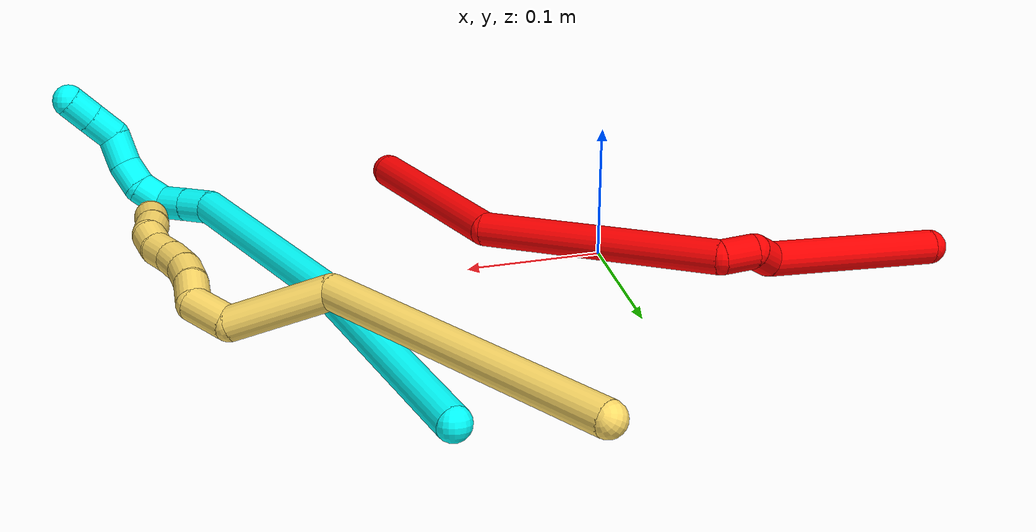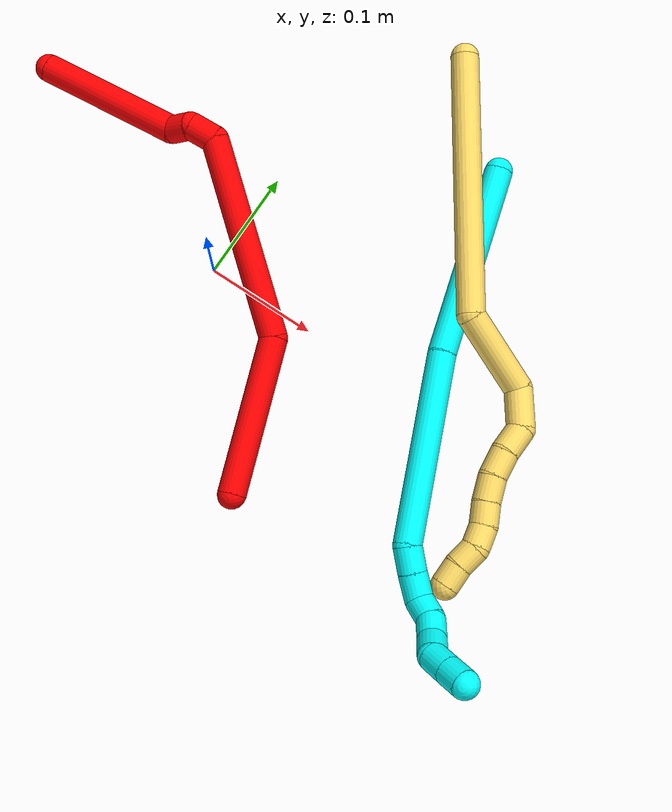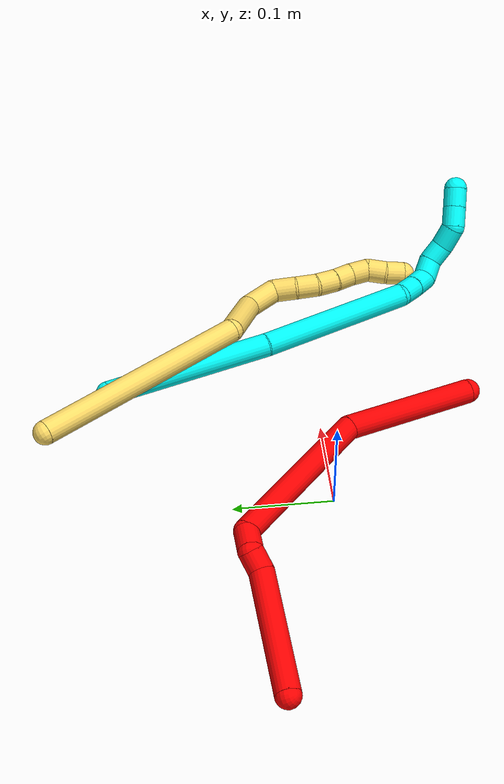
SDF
<sdf version="1.7">
 <world name="default">
  <model name="photoneo_s_sensor">
   <static>1</static>
   <pose>0 0 2 1.57079 1.57079 3.14159</pose>
   <link name="link">
    <inertial><mass>0.1</mass></inertial>
    <sensor name="sensor" type="depth">
     <update_rate>30</update_rate>
     <camera>
      <horizontal_fov>1.22</horizontal_fov>
      <image><width>1920</width><height>1200</height><format>B8G8R8</format></image>
      <clip><near>0.1</near><far>4</far></clip>
      <depth_camera><output>points</output></depth_camera>
     </camera>
     <plugin name="camera_plugin" filename="libgazebo_ros_depth_camera.so">
      <baseline>0.2</baseline>
      <alwaysOn>1</alwaysOn>
      <updateRate>0.0</updateRate>
      <cameraName>camera_ir</cameraName>
      <imageTopicName>/camera/color/image_raw</imageTopicName>
      <cameraInfoTopicName>/camera/color/camera_info</cameraInfoTopicName>
      <depthImageTopicName>/camera/depth/image_raw</depthImageTopicName>
      <depthImageCameraInfoTopicName>/camera/depth/camera_info</depthImageCameraInfoTopicName>
      <pointCloudTopicName>/camera/depth/points</pointCloudTopicName>
      <frameName>fr_optical</frameName>
      <pointCloudCutoff>0.1</pointCloudCutoff>
      <pointCloudCutoffMax>2.0</pointCloudCutoffMax>
      <distortionK1>0</distortionK1>
      <distortionK2>0</distortionK2>
      <distortionK3>0</distortionK3>
      <distortionT1>0</distortionT1>
      <distortionT2>0</distortionT2>
      <CxPrime>0</CxPrime>
      <Cx>0</Cx>
      <Cy>0</Cy>
      <focalLength>0</focalLength>
      <hackBaseline>0</hackBaseline>
     </plugin>
    </sensor>
   </link>
  </model>
  <model name="bin">
   <static>1</static>
   <link name="bottom">
    <collision name="collision-bottom">
     <pose>0 0 -0.01 0 -0 0</pose>
     <geometry><box><size>0.8 0.6 0.02</size></box></geometry>
     <surface>
      <friction><ode><mu>100</mu><mu2>100</mu2></ode></friction>
      <contact><collide_bitmask>65535</collide_bitmask></contact>
     </surface>
    </collision>
   </link>
   <link name="west_wall">
    <collision name="collision-west_wall">
     <pose>-0.41 0 0.1 0 -0 0</pose>
     <geometry><box><size>0.02 0.6 0.2</size></box></geometry>
     <surface>
      <friction><ode><mu>100</mu><mu2>100</mu2></ode></friction>
      <contact><collide_bitmask>65535</collide_bitmask></contact>
     </surface>
    </collision>
   </link>
   <link name="east_wall">
    <collision name="collision-east_wall">
     <pose>0.41 0 0.1 0 -0 0</pose>
     <geometry><box><size>0.02 0.6 0.2</size></box></geometry>
     <surface>
      <friction><ode><mu>100</mu><mu2>100</mu2></ode></friction>
      <contact><collide_bitmask>65535</collide_bitmask></contact>
     </surface>
    </collision>
   </link>
   <link name="south_wall">
    <collision name="collision-south_wall">
     <pose>0 -0.31 0.1 0 -0 0</pose>
     <geometry><box><size>0.8 0.02 0.2</size></box></geometry>
     <surface>
      <friction><ode><mu>100</mu><mu2>100</mu2></ode></friction>
      <contact><collide_bitmask>65535</collide_bitmask></contact>
     </surface>
    </collision>
   </link>
   <link name="north_wall">
    <collision name="collision-north_wall">
     <pose>0 0.31 0.1 0 -0 0</pose>
     <geometry><box><size>0.8 0.02 0.2</size></box></geometry>
     <surface>
      <friction><ode><mu>100</mu><mu2>100</mu2></ode></friction>
      <contact><collide_bitmask>65535</collide_bitmask></contact>
     </surface>
    </collision>
   </link>
  </model>
  <model name="2">
   <static>0</static>
   <link name="2">
    <collision name="collision-cylinder-e_1_1_4">
     <pose>-0.028809 0.045923 -0.043532 -2.32947 -0.427241 0.934547</pose>
     <geometry><cylinder><radius>0.0125</radius><length>0.139052</length></cylinder></geometry>
     <surface>
      <friction><ode><mu>1.16</mu><mu2>1.16</mu2><slip1>0</slip1><slip2>0</slip2></ode></friction>
      <contact><ode><kp>1e+06</kp><kd>1</kd><max_vel>0</max_vel><min_depth>0.001</min_depth></ode></contact>
     </surface>
    </collision>
    <visual name="visual-cylinder-e_1_1_4">
     <pose>-0.028809 0.045923 -0.043532 -2.32947 -0.427241 0.934547</pose>
     <geometry><cylinder><radius>0.0125</radius><length>0.139052</length></cylinder></geometry>
     <material><ambient>1 0 0 1</ambient></material>
    </visual>
    <collision name="collision-cylinder-e_2_4_5">
     <pose>-0.129409 0.14397 -0.110008 -1.98545 -0.900163 1.27487</pose>
     <geometry><cylinder><radius>0.0125</radius><length>0.183274</length></cylinder></geometry>
     <surface>
      <friction><ode><mu>1.16</mu><mu2>1.16</mu2><slip1>0</slip1><slip2>0</slip2></ode></friction>
      <contact><ode><kp>1e+06</kp><kd>1</kd><max_vel>0</max_vel><min_depth>0.001</min_depth></ode></contact>
     </surface>
    </collision>
    <visual name="visual-cylinder-e_2_4_5">
     <pose>-0.129409 0.14397 -0.110008 -1.98545 -0.900163 1.27487</pose>
     <geometry><cylinder><radius>0.0125</radius><length>0.183274</length></cylinder></geometry>
     <material><ambient>1 0 0 1</ambient></material>
    </visual>
    <collision name="collision-cylinder-e_3_5_6">
     <pose>-0.2129 0.197636 -0.129043 -0.375508 -1.22602 0.265708</pose>
     <geometry><cylinder><radius>0.0125</radius><length>0.024864</length></cylinder></geometry>
     <surface>
      <friction><ode><mu>1.16</mu><mu2>1.16</mu2><slip1>0</slip1><slip2>0</slip2></ode></friction>
      <contact><ode><kp>1e+06</kp><kd>1</kd><max_vel>0</max_vel><min_depth>0.001</min_depth></ode></contact>
     </surface>
    </collision>
    <visual name="visual-cylinder-e_3_5_6">
     <pose>-0.2129 0.197636 -0.129043 -0.375508 -1.22602 0.265708</pose>
     <geometry><cylinder><radius>0.0125</radius><length>0.024864</length></cylinder></geometry>
     <material><ambient>1 0 0 1</ambient></material>
    </visual>
    <collision name="collision-cylinder-e_4_6_7">
     <pose>-0.233132 0.192649 -0.123467 1.32087 -0.902369 -0.719947</pose>
     <geometry><cylinder><radius>0.0125</radius><length>0.021741</length></cylinder></geometry>
     <surface>
      <friction><ode><mu>1.16</mu><mu2>1.16</mu2><slip1>0</slip1><slip2>0</slip2></ode></friction>
      <contact><ode><kp>1e+06</kp><kd>1</kd><max_vel>0</max_vel><min_depth>0.001</min_depth></ode></contact>
     </surface>
    </collision>
    <visual name="visual-cylinder-e_4_6_7">
     <pose>-0.233132 0.192649 -0.123467 1.32087 -0.902369 -0.719947</pose>
     <geometry><cylinder><radius>0.0125</radius><length>0.021741</length></cylinder></geometry>
     <material><ambient>1 0 0 1</ambient></material>
    </visual>
    <collision name="collision-cylinder-e_5_7_2">
     <pose>-0.305032 0.1872 -0.105129 -0.064615 -1.31302 0.049794</pose>
     <geometry><cylinder><radius>0.0125</radius><length>0.131069</length></cylinder></geometry>
     <surface>
      <friction><ode><mu>1.16</mu><mu2>1.16</mu2><slip1>0</slip1><slip2>0</slip2></ode></friction>
      <contact><ode><kp>1e+06</kp><kd>1</kd><max_vel>0</max_vel><min_depth>0.001</min_depth></ode></contact>
     </surface>
    </collision>
    <visual name="visual-cylinder-e_5_7_2">
     <pose>-0.305032 0.1872 -0.105129 -0.064615 -1.31302 0.049794</pose>
     <geometry><cylinder><radius>0.0125</radius><length>0.131069</length></cylinder></geometry>
     <material><ambient>1 0 0 1</ambient></material>
    </visual>
    <collision name="collision-sphere-2">
     <pose>-0.368401 0.188279 -0.088457 0 -0 0</pose>
     <geometry><sphere><radius>0.0125</radius></sphere></geometry>
     <surface>
      <friction><ode><mu>1.16</mu><mu2>1.16</mu2><slip1>0</slip1><slip2>0</slip2></ode></friction>
      <contact><ode><kp>1e+06</kp><kd>1</kd><max_vel>0</max_vel><min_depth>0.001</min_depth></ode></contact>
     </surface>
    </collision>
    <visual name="visual-sphere-2">
     <pose>-0.368401 0.188279 -0.088457 0 -0 0</pose>
     <geometry><sphere><radius>0.0125</radius></sphere></geometry>
     <material><ambient>1 0 0 1</ambient></material>
    </visual>
    <collision name="collision-sphere-7">
     <pose>-0.241663 0.186121 -0.121801 0 -0 0</pose>
     <geometry><sphere><radius>0.0125</radius></sphere></geometry>
     <surface>
      <friction><ode><mu>1.16</mu><mu2>1.16</mu2><slip1>0</slip1><slip2>0</slip2></ode></friction>
      <contact><ode><kp>1e+06</kp><kd>1</kd><max_vel>0</max_vel><min_depth>0.001</min_depth></ode></contact>
     </surface>
    </collision>
    <visual name="visual-sphere-7">
     <pose>-0.241663 0.186121 -0.121801 0 -0 0</pose>
     <geometry><sphere><radius>0.0125</radius></sphere></geometry>
     <material><ambient>1 0 0 1</ambient></material>
    </visual>
    <collision name="collision-sphere-6">
     <pose>-0.2246 0.199177 -0.125133 0 -0 0</pose>
     <geometry><sphere><radius>0.0125</radius></sphere></geometry>
     <surface>
      <friction><ode><mu>1.16</mu><mu2>1.16</mu2><slip1>0</slip1><slip2>0</slip2></ode></friction>
      <contact><ode><kp>1e+06</kp><kd>1</kd><max_vel>0</max_vel><min_depth>0.001</min_depth></ode></contact>
     </surface>
    </collision>
    <visual name="visual-sphere-6">
     <pose>-0.2246 0.199177 -0.125133 0 -0 0</pose>
     <geometry><sphere><radius>0.0125</radius></sphere></geometry>
     <material><ambient>1 0 0 1</ambient></material>
    </visual>
    <collision name="collision-sphere-5">
     <pose>-0.2012 0.196095 -0.132952 0 -0 0</pose>
     <geometry><sphere><radius>0.0125</radius></sphere></geometry>
     <surface>
      <friction><ode><mu>1.16</mu><mu2>1.16</mu2><slip1>0</slip1><slip2>0</slip2></ode></friction>
      <contact><ode><kp>1e+06</kp><kd>1</kd><max_vel>0</max_vel><min_depth>0.001</min_depth></ode></contact>
     </surface>
    </collision>
    <visual name="visual-sphere-5">
     <pose>-0.2012 0.196095 -0.132952 0 -0 0</pose>
     <geometry><sphere><radius>0.0125</radius></sphere></geometry>
     <material><ambient>1 0 0 1</ambient></material>
    </visual>
    <collision name="collision-sphere-1">
     <geometry><sphere><radius>0.0125</radius></sphere></geometry>
     <surface>
      <friction><ode><mu>1.16</mu><mu2>1.16</mu2><slip1>0</slip1><slip2>0</slip2></ode></friction>
      <contact><ode><kp>1e+06</kp><kd>1</kd><max_vel>0</max_vel><min_depth>0.001</min_depth></ode></contact>
     </surface>
    </collision>
    <visual name="visual-sphere-1">
     <geometry><sphere><radius>0.0125</radius></sphere></geometry>
     <material><ambient>1 0 0 1</ambient></material>
    </visual>
    <collision name="collision-sphere-4">
     <pose>-0.057618 0.091846 -0.087064 0 -0 0</pose>
     <geometry><sphere><radius>0.0125</radius></sphere></geometry>
     <surface>
      <friction><ode><mu>1.16</mu><mu2>1.16</mu2><slip1>0</slip1><slip2>0</slip2></ode></friction>
      <contact><ode><kp>1e+06</kp><kd>1</kd><max_vel>0</max_vel><min_depth>0.001</min_depth></ode></contact>
     </surface>
    </collision>
    <visual name="visual-sphere-4">
     <pose>-0.057618 0.091846 -0.087064 0 -0 0</pose>
     <geometry><sphere><radius>0.0125</radius></sphere></geometry>
     <material><ambient>1 0 0 1</ambient></material>
    </visual>
    <inertial>
     <pose>-0.156131 0.13282 -0.091773 0 -0 0</pose>
     <mass>0.5</mass>
     <inertia>
      <ixx>0.000719</ixx>
      <ixy>0</ixy>
      <ixz>0</ixz>
      <iyy>0.000947</iyy>
      <iyz>0</iyz>
      <izz>0.000236</izz>
     </inertia>
    </inertial>
   </link>
   <pose>0.126096 -0.156366 0.011494 0.936374 -0.260729 -0.124419</pose>
  </model>
  <model name="3">
   <static>0</static>
   <link name="3">
    <collision name="collision-cylinder-e_1_1_4">
     <pose>-0.011075 -0.083696 -0.025681 1.86851 -0.125834 -0.170048</pose>
     <geometry><cylinder><radius>0.0125</radius><length>0.17649</length></cylinder></geometry>
     <surface>
      <friction><ode><mu>1.16</mu><mu2>1.16</mu2><slip1>0</slip1><slip2>0</slip2></ode></friction>
      <contact><ode><kp>1e+06</kp><kd>1</kd><max_vel>0</max_vel><min_depth>0.001</min_depth></ode></contact>
     </surface>
    </collision>
    <visual name="visual-cylinder-e_1_1_4">
     <pose>-0.011075 -0.083696 -0.025681 1.86851 -0.125834 -0.170048</pose>
     <geometry><cylinder><radius>0.0125</radius><length>0.17649</length></cylinder></geometry>
     <material><ambient>0.003922 1 0.996078 1</ambient></material>
    </visual>
    <collision name="collision-cylinder-e_2_4_5">
     <pose>-0.042117 -0.246324 -0.070623 1.81014 -0.24098 -0.305941</pose>
     <geometry><cylinder><radius>0.0125</radius><length>0.167331</length></cylinder></geometry>
     <surface>
      <friction><ode><mu>1.16</mu><mu2>1.16</mu2><slip1>0</slip1><slip2>0</slip2></ode></friction>
      <contact><ode><kp>1e+06</kp><kd>1</kd><max_vel>0</max_vel><min_depth>0.001</min_depth></ode></contact>
     </surface>
    </collision>
    <visual name="visual-cylinder-e_2_4_5">
     <pose>-0.042117 -0.246324 -0.070623 1.81014 -0.24098 -0.305941</pose>
     <geometry><cylinder><radius>0.0125</radius><length>0.167331</length></cylinder></geometry>
     <material><ambient>0.003922 1 0.996078 1</ambient></material>
    </visual>
    <collision name="collision-cylinder-e_3_5_6">
     <pose>-0.068505 -0.33488 -0.089919 1.57445 -0.58834 -0.590369</pose>
     <geometry><cylinder><radius>0.0125</radius><length>0.023138</length></cylinder></geometry>
     <surface>
      <friction><ode><mu>1.16</mu><mu2>1.16</mu2><slip1>0</slip1><slip2>0</slip2></ode></friction>
      <contact><ode><kp>1e+06</kp><kd>1</kd><max_vel>0</max_vel><min_depth>0.001</min_depth></ode></contact>
     </surface>
    </collision>
    <visual name="visual-cylinder-e_3_5_6">
     <pose>-0.068505 -0.33488 -0.089919 1.57445 -0.58834 -0.590369</pose>
     <geometry><cylinder><radius>0.0125</radius><length>0.023138</length></cylinder></geometry>
     <material><ambient>0.003922 1 0.996078 1</ambient></material>
    </visual>
    <collision name="collision-cylinder-e_4_6_7">
     <pose>-0.081947 -0.353864 -0.089969 1.57233 -0.643608 -0.644531</pose>
     <geometry><cylinder><radius>0.0125</radius><length>0.023402</length></cylinder></geometry>
     <surface>
      <friction><ode><mu>1.16</mu><mu2>1.16</mu2><slip1>0</slip1><slip2>0</slip2></ode></friction>
      <contact><ode><kp>1e+06</kp><kd>1</kd><max_vel>0</max_vel><min_depth>0.001</min_depth></ode></contact>
     </surface>
    </collision>
    <visual name="visual-cylinder-e_4_6_7">
     <pose>-0.081947 -0.353864 -0.089969 1.57233 -0.643608 -0.644531</pose>
     <geometry><cylinder><radius>0.0125</radius><length>0.023402</length></cylinder></geometry>
     <material><ambient>0.003922 1 0.996078 1</ambient></material>
    </visual>
    <collision name="collision-cylinder-e_5_7_8">
     <pose>-0.096776 -0.367329 -0.0959 2.53495 -0.825757 -1.90084</pose>
     <geometry><cylinder><radius>0.0125</radius><length>0.021243</length></cylinder></geometry>
     <surface>
      <friction><ode><mu>1.16</mu><mu2>1.16</mu2><slip1>0</slip1><slip2>0</slip2></ode></friction>
      <contact><ode><kp>1e+06</kp><kd>1</kd><max_vel>0</max_vel><min_depth>0.001</min_depth></ode></contact>
     </surface>
    </collision>
    <visual name="visual-cylinder-e_5_7_8">
     <pose>-0.096776 -0.367329 -0.0959 2.53495 -0.825757 -1.90084</pose>
     <geometry><cylinder><radius>0.0125</radius><length>0.021243</length></cylinder></geometry>
     <material><ambient>0.003922 1 0.996078 1</ambient></material>
    </visual>
    <collision name="collision-cylinder-e_6_8_9">
     <pose>-0.108587 -0.377188 -0.10984 2.51957 -0.38529 -1.09087</pose>
     <geometry><cylinder><radius>0.0125</radius><length>0.021308</length></cylinder></geometry>
     <surface>
      <friction><ode><mu>1.16</mu><mu2>1.16</mu2><slip1>0</slip1><slip2>0</slip2></ode></friction>
      <contact><ode><kp>1e+06</kp><kd>1</kd><max_vel>0</max_vel><min_depth>0.001</min_depth></ode></contact>
     </surface>
    </collision>
    <visual name="visual-cylinder-e_6_8_9">
     <pose>-0.108587 -0.377188 -0.10984 2.51957 -0.38529 -1.09087</pose>
     <geometry><cylinder><radius>0.0125</radius><length>0.021308</length></cylinder></geometry>
     <material><ambient>0.003922 1 0.996078 1</ambient></material>
    </visual>
    <collision name="collision-cylinder-e_7_9_10">
     <pose>-0.115701 -0.3863 -0.129122 2.85156 -0.258704 -1.4553</pose>
     <geometry><cylinder><radius>0.0125</radius><length>0.024307</length></cylinder></geometry>
     <surface>
      <friction><ode><mu>1.16</mu><mu2>1.16</mu2><slip1>0</slip1><slip2>0</slip2></ode></friction>
      <contact><ode><kp>1e+06</kp><kd>1</kd><max_vel>0</max_vel><min_depth>0.001</min_depth></ode></contact>
     </surface>
    </collision>
    <visual name="visual-cylinder-e_7_9_10">
     <pose>-0.115701 -0.3863 -0.129122 2.85156 -0.258704 -1.4553</pose>
     <geometry><cylinder><radius>0.0125</radius><length>0.024307</length></cylinder></geometry>
     <material><ambient>0.003922 1 0.996078 1</ambient></material>
    </visual>
    <collision name="collision-cylinder-e_8_10_11">
     <pose>-0.127123 -0.39053 -0.14762 3.02204 -0.850716 -2.8789</pose>
     <geometry><cylinder><radius>0.0125</radius><length>0.022116</length></cylinder></geometry>
     <surface>
      <friction><ode><mu>1.16</mu><mu2>1.16</mu2><slip1>0</slip1><slip2>0</slip2></ode></friction>
      <contact><ode><kp>1e+06</kp><kd>1</kd><max_vel>0</max_vel><min_depth>0.001</min_depth></ode></contact>
     </surface>
    </collision>
    <visual name="visual-cylinder-e_8_10_11">
     <pose>-0.127123 -0.39053 -0.14762 3.02204 -0.850716 -2.8789</pose>
     <geometry><cylinder><radius>0.0125</radius><length>0.022116</length></cylinder></geometry>
     <material><ambient>0.003922 1 0.996078 1</ambient></material>
    </visual>
    <collision name="collision-cylinder-e_9_11_2">
     <pose>-0.14318 -0.392043 -0.16167 3.04737 -0.84735 -2.93327</pose>
     <geometry><cylinder><radius>0.0125</radius><length>0.020665</length></cylinder></geometry>
     <surface>
      <friction><ode><mu>1.16</mu><mu2>1.16</mu2><slip1>0</slip1><slip2>0</slip2></ode></friction>
      <contact><ode><kp>1e+06</kp><kd>1</kd><max_vel>0</max_vel><min_depth>0.001</min_depth></ode></contact>
     </surface>
    </collision>
    <visual name="visual-cylinder-e_9_11_2">
     <pose>-0.14318 -0.392043 -0.16167 3.04737 -0.84735 -2.93327</pose>
     <geometry><cylinder><radius>0.0125</radius><length>0.020665</length></cylinder></geometry>
     <material><ambient>0.003922 1 0.996078 1</ambient></material>
    </visual>
    <collision name="collision-sphere-2">
     <pose>-0.150925 -0.392687 -0.168479 0 -0 0</pose>
     <geometry><sphere><radius>0.0125</radius></sphere></geometry>
     <surface>
      <friction><ode><mu>1.16</mu><mu2>1.16</mu2><slip1>0</slip1><slip2>0</slip2></ode></friction>
      <contact><ode><kp>1e+06</kp><kd>1</kd><max_vel>0</max_vel><min_depth>0.001</min_depth></ode></contact>
     </surface>
    </collision>
    <visual name="visual-sphere-2">
     <pose>-0.150925 -0.392687 -0.168479 0 -0 0</pose>
     <geometry><sphere><radius>0.0125</radius></sphere></geometry>
     <material><ambient>0.003922 1 0.996078 1</ambient></material>
    </visual>
    <collision name="collision-sphere-11">
     <pose>-0.135436 -0.3914 -0.15486 0 -0 0</pose>
     <geometry><sphere><radius>0.0125</radius></sphere></geometry>
     <surface>
      <friction><ode><mu>1.16</mu><mu2>1.16</mu2><slip1>0</slip1><slip2>0</slip2></ode></friction>
      <contact><ode><kp>1e+06</kp><kd>1</kd><max_vel>0</max_vel><min_depth>0.001</min_depth></ode></contact>
     </surface>
    </collision>
    <visual name="visual-sphere-11">
     <pose>-0.135436 -0.3914 -0.15486 0 -0 0</pose>
     <geometry><sphere><radius>0.0125</radius></sphere></geometry>
     <material><ambient>0.003922 1 0.996078 1</ambient></material>
    </visual>
    <collision name="collision-sphere-10">
     <pose>-0.11881 -0.38966 -0.14038 0 -0 0</pose>
     <geometry><sphere><radius>0.0125</radius></sphere></geometry>
     <surface>
      <friction><ode><mu>1.16</mu><mu2>1.16</mu2><slip1>0</slip1><slip2>0</slip2></ode></friction>
      <contact><ode><kp>1e+06</kp><kd>1</kd><max_vel>0</max_vel><min_depth>0.001</min_depth></ode></contact>
     </surface>
    </collision>
    <visual name="visual-sphere-10">
     <pose>-0.11881 -0.38966 -0.14038 0 -0 0</pose>
     <geometry><sphere><radius>0.0125</radius></sphere></geometry>
     <material><ambient>0.003922 1 0.996078 1</ambient></material>
    </visual>
    <collision name="collision-sphere-9">
     <pose>-0.112591 -0.38294 -0.117863 0 -0 0</pose>
     <geometry><sphere><radius>0.0125</radius></sphere></geometry>
     <surface>
      <friction><ode><mu>1.16</mu><mu2>1.16</mu2><slip1>0</slip1><slip2>0</slip2></ode></friction>
      <contact><ode><kp>1e+06</kp><kd>1</kd><max_vel>0</max_vel><min_depth>0.001</min_depth></ode></contact>
     </surface>
    </collision>
    <visual name="visual-sphere-9">
     <pose>-0.112591 -0.38294 -0.117863 0 -0 0</pose>
     <geometry><sphere><radius>0.0125</radius></sphere></geometry>
     <material><ambient>0.003922 1 0.996078 1</ambient></material>
    </visual>
    <collision name="collision-sphere-4">
     <pose>-0.02215 -0.167393 -0.051361 0 -0 0</pose>
     <geometry><sphere><radius>0.0125</radius></sphere></geometry>
     <surface>
      <friction><ode><mu>1.16</mu><mu2>1.16</mu2><slip1>0</slip1><slip2>0</slip2></ode></friction>
      <contact><ode><kp>1e+06</kp><kd>1</kd><max_vel>0</max_vel><min_depth>0.001</min_depth></ode></contact>
     </surface>
    </collision>
    <visual name="visual-sphere-4">
     <pose>-0.02215 -0.167393 -0.051361 0 -0 0</pose>
     <geometry><sphere><radius>0.0125</radius></sphere></geometry>
     <material><ambient>0.003922 1 0.996078 1</ambient></material>
    </visual>
    <collision name="collision-sphere-1">
     <geometry><sphere><radius>0.0125</radius></sphere></geometry>
     <surface>
      <friction><ode><mu>1.16</mu><mu2>1.16</mu2><slip1>0</slip1><slip2>0</slip2></ode></friction>
      <contact><ode><kp>1e+06</kp><kd>1</kd><max_vel>0</max_vel><min_depth>0.001</min_depth></ode></contact>
     </surface>
    </collision>
    <visual name="visual-sphere-1">
     <geometry><sphere><radius>0.0125</radius></sphere></geometry>
     <material><ambient>0.003922 1 0.996078 1</ambient></material>
    </visual>
    <collision name="collision-sphere-8">
     <pose>-0.104583 -0.371435 -0.101816 0 -0 0</pose>
     <geometry><sphere><radius>0.0125</radius></sphere></geometry>
     <surface>
      <friction><ode><mu>1.16</mu><mu2>1.16</mu2><slip1>0</slip1><slip2>0</slip2></ode></friction>
      <contact><ode><kp>1e+06</kp><kd>1</kd><max_vel>0</max_vel><min_depth>0.001</min_depth></ode></contact>
     </surface>
    </collision>
    <visual name="visual-sphere-8">
     <pose>-0.104583 -0.371435 -0.101816 0 -0 0</pose>
     <geometry><sphere><radius>0.0125</radius></sphere></geometry>
     <material><ambient>0.003922 1 0.996078 1</ambient></material>
    </visual>
    <collision name="collision-sphere-5">
     <pose>-0.062084 -0.325256 -0.089884 0 -0 0</pose>
     <geometry><sphere><radius>0.0125</radius></sphere></geometry>
     <surface>
      <friction><ode><mu>1.16</mu><mu2>1.16</mu2><slip1>0</slip1><slip2>0</slip2></ode></friction>
      <contact><ode><kp>1e+06</kp><kd>1</kd><max_vel>0</max_vel><min_depth>0.001</min_depth></ode></contact>
     </surface>
    </collision>
    <visual name="visual-sphere-5">
     <pose>-0.062084 -0.325256 -0.089884 0 -0 0</pose>
     <geometry><sphere><radius>0.0125</radius></sphere></geometry>
     <material><ambient>0.003922 1 0.996078 1</ambient></material>
    </visual>
    <collision name="collision-sphere-6">
     <pose>-0.074925 -0.344504 -0.089954 0 -0 0</pose>
     <geometry><sphere><radius>0.0125</radius></sphere></geometry>
     <surface>
      <friction><ode><mu>1.16</mu><mu2>1.16</mu2><slip1>0</slip1><slip2>0</slip2></ode></friction>
      <contact><ode><kp>1e+06</kp><kd>1</kd><max_vel>0</max_vel><min_depth>0.001</min_depth></ode></contact>
     </surface>
    </collision>
    <visual name="visual-sphere-6">
     <pose>-0.074925 -0.344504 -0.089954 0 -0 0</pose>
     <geometry><sphere><radius>0.0125</radius></sphere></geometry>
     <material><ambient>0.003922 1 0.996078 1</ambient></material>
    </visual>
    <collision name="collision-sphere-7">
     <pose>-0.088968 -0.363224 -0.089983 0 -0 0</pose>
     <geometry><sphere><radius>0.0125</radius></sphere></geometry>
     <surface>
      <friction><ode><mu>1.16</mu><mu2>1.16</mu2><slip1>0</slip1><slip2>0</slip2></ode></friction>
      <contact><ode><kp>1e+06</kp><kd>1</kd><max_vel>0</max_vel><min_depth>0.001</min_depth></ode></contact>
     </surface>
    </collision>
    <visual name="visual-sphere-7">
     <pose>-0.088968 -0.363224 -0.089983 0 -0 0</pose>
     <geometry><sphere><radius>0.0125</radius></sphere></geometry>
     <material><ambient>0.003922 1 0.996078 1</ambient></material>
    </visual>
    <inertial>
     <pose>-0.050914 -0.227975 -0.069315 0 -0 0</pose>
     <mass>0.5</mass>
     <inertia>
      <ixx>0.000611</ixx>
      <ixy>0</ixy>
      <ixz>0</ixz>
      <iyy>-0.000413</iyy>
      <iyz>0</iyz>
      <izz>0.000968</izz>
     </inertia>
    </inertial>
   </link>
   <pose>0.161416 0.213504 0.012047 2.87284 0.10674 -2.99123</pose>
  </model>
  <model name="5">
   <static>0</static>
   <link name="5">
    <collision name="collision-cylinder-e_1_1_4">
     <pose>0.056792 -0.103099 0.001133 1.5598 0.503472 0.498194</pose>
     <geometry><cylinder><radius>0.0125</radius><length>0.235423</length></cylinder></geometry>
     <surface>
      <friction><ode><mu>1.16</mu><mu2>1.16</mu2><slip1>0</slip1><slip2>0</slip2></ode></friction>
      <contact><ode><kp>1e+06</kp><kd>1</kd><max_vel>0</max_vel><min_depth>0.001</min_depth></ode></contact>
     </surface>
    </collision>
    <visual name="visual-cylinder-e_1_1_4">
     <pose>0.056792 -0.103099 0.001133 1.5598 0.503472 0.498194</pose>
     <geometry><cylinder><radius>0.0125</radius><length>0.235423</length></cylinder></geometry>
     <material><ambient>1 0.858824 0.4 1</ambient></material>
    </visual>
    <collision name="collision-cylinder-e_2_4_5">
     <pose>0.106328 -0.243225 -0.005153 1.76857 -0.189854 -0.231334</pose>
     <geometry><cylinder><radius>0.0125</radius><length>0.076908</length></cylinder></geometry>
     <surface>
      <friction><ode><mu>1.16</mu><mu2>1.16</mu2><slip1>0</slip1><slip2>0</slip2></ode></friction>
      <contact><ode><kp>1e+06</kp><kd>1</kd><max_vel>0</max_vel><min_depth>0.001</min_depth></ode></contact>
     </surface>
    </collision>
    <visual name="visual-cylinder-e_2_4_5">
     <pose>0.106328 -0.243225 -0.005153 1.76857 -0.189854 -0.231334</pose>
     <geometry><cylinder><radius>0.0125</radius><length>0.076908</length></cylinder></geometry>
     <material><ambient>1 0.858824 0.4 1</ambient></material>
    </visual>
    <collision name="collision-cylinder-e_3_5_6">
     <pose>0.108406 -0.295795 -0.013494 1.62997 0.54011 0.571335</pose>
     <geometry><cylinder><radius>0.0125</radius><length>0.036309</length></cylinder></geometry>
     <surface>
      <friction><ode><mu>1.16</mu><mu2>1.16</mu2><slip1>0</slip1><slip2>0</slip2></ode></friction>
      <contact><ode><kp>1e+06</kp><kd>1</kd><max_vel>0</max_vel><min_depth>0.001</min_depth></ode></contact>
     </surface>
    </collision>
    <visual name="visual-cylinder-e_3_5_6">
     <pose>0.108406 -0.295795 -0.013494 1.62997 0.54011 0.571335</pose>
     <geometry><cylinder><radius>0.0125</radius><length>0.036309</length></cylinder></geometry>
     <material><ambient>1 0.858824 0.4 1</ambient></material>
    </visual>
    <collision name="collision-cylinder-e_4_6_7">
     <pose>0.127651 -0.317216 -0.009565 0.881034 0.915239 0.456246</pose>
     <geometry><cylinder><radius>0.0125</radius><length>0.025001</length></cylinder></geometry>
     <surface>
      <friction><ode><mu>1.16</mu><mu2>1.16</mu2><slip1>0</slip1><slip2>0</slip2></ode></friction>
      <contact><ode><kp>1e+06</kp><kd>1</kd><max_vel>0</max_vel><min_depth>0.001</min_depth></ode></contact>
     </surface>
    </collision>
    <visual name="visual-cylinder-e_4_6_7">
     <pose>0.127651 -0.317216 -0.009565 0.881034 0.915239 0.456246</pose>
     <geometry><cylinder><radius>0.0125</radius><length>0.025001</length></cylinder></geometry>
     <material><ambient>1 0.858824 0.4 1</ambient></material>
    </visual>
    <collision name="collision-cylinder-e_5_7_8">
     <pose>0.14549 -0.330426 -0.000429 1.04167 0.751072 0.444849</pose>
     <geometry><cylinder><radius>0.0125</radius><length>0.023239</length></cylinder></geometry>
     <surface>
      <friction><ode><mu>1.16</mu><mu2>1.16</mu2><slip1>0</slip1><slip2>0</slip2></ode></friction>
      <contact><ode><kp>1e+06</kp><kd>1</kd><max_vel>0</max_vel><min_depth>0.001</min_depth></ode></contact>
     </surface>
    </collision>
    <visual name="visual-cylinder-e_5_7_8">
     <pose>0.14549 -0.330426 -0.000429 1.04167 0.751072 0.444849</pose>
     <geometry><cylinder><radius>0.0125</radius><length>0.023239</length></cylinder></geometry>
     <material><ambient>1 0.858824 0.4 1</ambient></material>
    </visual>
    <collision name="collision-cylinder-e_6_8_9">
     <pose>0.159863 -0.346524 0.006579 1.26989 0.612168 0.457476</pose>
     <geometry><cylinder><radius>0.0125</radius><length>0.022429</length></cylinder></geometry>
     <surface>
      <friction><ode><mu>1.16</mu><mu2>1.16</mu2><slip1>0</slip1><slip2>0</slip2></ode></friction>
      <contact><ode><kp>1e+06</kp><kd>1</kd><max_vel>0</max_vel><min_depth>0.001</min_depth></ode></contact>
     </surface>
    </collision>
    <visual name="visual-cylinder-e_6_8_9">
     <pose>0.159863 -0.346524 0.006579 1.26989 0.612168 0.457476</pose>
     <geometry><cylinder><radius>0.0125</radius><length>0.022429</length></cylinder></geometry>
     <material><ambient>1 0.858824 0.4 1</ambient></material>
    </visual>
    <collision name="collision-cylinder-e_7_9_10">
     <pose>0.171754 -0.363934 0.010688 1.41151 0.556481 0.477559</pose>
     <geometry><cylinder><radius>0.0125</radius><length>0.020624</length></cylinder></geometry>
     <surface>
      <friction><ode><mu>1.16</mu><mu2>1.16</mu2><slip1>0</slip1><slip2>0</slip2></ode></friction>
      <contact><ode><kp>1e+06</kp><kd>1</kd><max_vel>0</max_vel><min_depth>0.001</min_depth></ode></contact>
     </surface>
    </collision>
    <visual name="visual-cylinder-e_7_9_10">
     <pose>0.171754 -0.363934 0.010688 1.41151 0.556481 0.477559</pose>
     <geometry><cylinder><radius>0.0125</radius><length>0.020624</length></cylinder></geometry>
     <material><ambient>1 0.858824 0.4 1</ambient></material>
    </visual>
    <collision name="collision-cylinder-e_8_10_11">
     <pose>0.184271 -0.379179 0.014628 1.20193 0.784989 0.553063</pose>
     <geometry><cylinder><radius>0.0125</radius><length>0.020004</length></cylinder></geometry>
     <surface>
      <friction><ode><mu>1.16</mu><mu2>1.16</mu2><slip1>0</slip1><slip2>0</slip2></ode></friction>
      <contact><ode><kp>1e+06</kp><kd>1</kd><max_vel>0</max_vel><min_depth>0.001</min_depth></ode></contact>
     </surface>
    </collision>
    <visual name="visual-cylinder-e_8_10_11">
     <pose>0.184271 -0.379179 0.014628 1.20193 0.784989 0.553063</pose>
     <geometry><cylinder><radius>0.0125</radius><length>0.020004</length></cylinder></geometry>
     <material><ambient>1 0.858824 0.4 1</ambient></material>
    </visual>
    <collision name="collision-cylinder-e_9_11_12">
     <pose>0.197958 -0.390059 0.023363 0.605473 0.721581 0.234611</pose>
     <geometry><cylinder><radius>0.0125</radius><length>0.020035</length></cylinder></geometry>
     <surface>
      <friction><ode><mu>1.16</mu><mu2>1.16</mu2><slip1>0</slip1><slip2>0</slip2></ode></friction>
      <contact><ode><kp>1e+06</kp><kd>1</kd><max_vel>0</max_vel><min_depth>0.001</min_depth></ode></contact>
     </surface>
    </collision>
    <visual name="visual-cylinder-e_9_11_12">
     <pose>0.197958 -0.390059 0.023363 0.605473 0.721581 0.234611</pose>
     <geometry><cylinder><radius>0.0125</radius><length>0.020035</length></cylinder></geometry>
     <material><ambient>1 0.858824 0.4 1</ambient></material>
    </visual>
    <collision name="collision-cylinder-e_10_12_2">
     <pose>0.210755 -0.400227 0.034784 0.843684 0.665024 0.307514</pose>
     <geometry><cylinder><radius>0.0125</radius><length>0.020027</length></cylinder></geometry>
     <surface>
      <friction><ode><mu>1.16</mu><mu2>1.16</mu2><slip1>0</slip1><slip2>0</slip2></ode></friction>
      <contact><ode><kp>1e+06</kp><kd>1</kd><max_vel>0</max_vel><min_depth>0.001</min_depth></ode></contact>
     </surface>
    </collision>
    <visual name="visual-cylinder-e_10_12_2">
     <pose>0.210755 -0.400227 0.034784 0.843684 0.665024 0.307514</pose>
     <geometry><cylinder><radius>0.0125</radius><length>0.020027</length></cylinder></geometry>
     <material><ambient>1 0.858824 0.4 1</ambient></material>
    </visual>
    <collision name="collision-sphere-2">
     <pose>0.216934 -0.406114 0.040022 0 -0 0</pose>
     <geometry><sphere><radius>0.0125</radius></sphere></geometry>
     <surface>
      <friction><ode><mu>1.16</mu><mu2>1.16</mu2><slip1>0</slip1><slip2>0</slip2></ode></friction>
      <contact><ode><kp>1e+06</kp><kd>1</kd><max_vel>0</max_vel><min_depth>0.001</min_depth></ode></contact>
     </surface>
    </collision>
    <visual name="visual-sphere-2">
     <pose>0.216934 -0.406114 0.040022 0 -0 0</pose>
     <geometry><sphere><radius>0.0125</radius></sphere></geometry>
     <material><ambient>1 0.858824 0.4 1</ambient></material>
    </visual>
    <collision name="collision-sphere-12">
     <pose>0.204575 -0.39434 0.029546 0 -0 0</pose>
     <geometry><sphere><radius>0.0125</radius></sphere></geometry>
     <surface>
      <friction><ode><mu>1.16</mu><mu2>1.16</mu2><slip1>0</slip1><slip2>0</slip2></ode></friction>
      <contact><ode><kp>1e+06</kp><kd>1</kd><max_vel>0</max_vel><min_depth>0.001</min_depth></ode></contact>
     </surface>
    </collision>
    <visual name="visual-sphere-12">
     <pose>0.204575 -0.39434 0.029546 0 -0 0</pose>
     <geometry><sphere><radius>0.0125</radius></sphere></geometry>
     <material><ambient>1 0.858824 0.4 1</ambient></material>
    </visual>
    <collision name="collision-sphere-11">
     <pose>0.191341 -0.385779 0.017179 0 -0 0</pose>
     <geometry><sphere><radius>0.0125</radius></sphere></geometry>
     <surface>
      <friction><ode><mu>1.16</mu><mu2>1.16</mu2><slip1>0</slip1><slip2>0</slip2></ode></friction>
      <contact><ode><kp>1e+06</kp><kd>1</kd><max_vel>0</max_vel><min_depth>0.001</min_depth></ode></contact>
     </surface>
    </collision>
    <visual name="visual-sphere-11">
     <pose>0.191341 -0.385779 0.017179 0 -0 0</pose>
     <geometry><sphere><radius>0.0125</radius></sphere></geometry>
     <material><ambient>1 0.858824 0.4 1</ambient></material>
    </visual>
    <collision name="collision-sphere-10">
     <pose>0.177201 -0.37258 0.012077 0 -0 0</pose>
     <geometry><sphere><radius>0.0125</radius></sphere></geometry>
     <surface>
      <friction><ode><mu>1.16</mu><mu2>1.16</mu2><slip1>0</slip1><slip2>0</slip2></ode></friction>
      <contact><ode><kp>1e+06</kp><kd>1</kd><max_vel>0</max_vel><min_depth>0.001</min_depth></ode></contact>
     </surface>
    </collision>
    <visual name="visual-sphere-10">
     <pose>0.177201 -0.37258 0.012077 0 -0 0</pose>
     <geometry><sphere><radius>0.0125</radius></sphere></geometry>
     <material><ambient>1 0.858824 0.4 1</ambient></material>
    </visual>
    <collision name="collision-sphere-9">
     <pose>0.166308 -0.355289 0.009299 0 -0 0</pose>
     <geometry><sphere><radius>0.0125</radius></sphere></geometry>
     <surface>
      <friction><ode><mu>1.16</mu><mu2>1.16</mu2><slip1>0</slip1><slip2>0</slip2></ode></friction>
      <contact><ode><kp>1e+06</kp><kd>1</kd><max_vel>0</max_vel><min_depth>0.001</min_depth></ode></contact>
     </surface>
    </collision>
    <visual name="visual-sphere-9">
     <pose>0.166308 -0.355289 0.009299 0 -0 0</pose>
     <geometry><sphere><radius>0.0125</radius></sphere></geometry>
     <material><ambient>1 0.858824 0.4 1</ambient></material>
    </visual>
    <collision name="collision-sphere-4">
     <pose>0.113584 -0.206197 0.002267 0 -0 0</pose>
     <geometry><sphere><radius>0.0125</radius></sphere></geometry>
     <surface>
      <friction><ode><mu>1.16</mu><mu2>1.16</mu2><slip1>0</slip1><slip2>0</slip2></ode></friction>
      <contact><ode><kp>1e+06</kp><kd>1</kd><max_vel>0</max_vel><min_depth>0.001</min_depth></ode></contact>
     </surface>
    </collision>
    <visual name="visual-sphere-4">
     <pose>0.113584 -0.206197 0.002267 0 -0 0</pose>
     <geometry><sphere><radius>0.0125</radius></sphere></geometry>
     <material><ambient>1 0.858824 0.4 1</ambient></material>
    </visual>
    <collision name="collision-sphere-1">
     <geometry><sphere><radius>0.0125</radius></sphere></geometry>
     <surface>
      <friction><ode><mu>1.16</mu><mu2>1.16</mu2><slip1>0</slip1><slip2>0</slip2></ode></friction>
      <contact><ode><kp>1e+06</kp><kd>1</kd><max_vel>0</max_vel><min_depth>0.001</min_depth></ode></contact>
     </surface>
    </collision>
    <visual name="visual-sphere-1">
     <geometry><sphere><radius>0.0125</radius></sphere></geometry>
     <material><ambient>1 0.858824 0.4 1</ambient></material>
    </visual>
    <collision name="collision-sphere-8">
     <pose>0.153419 -0.337758 0.003858 0 -0 0</pose>
     <geometry><sphere><radius>0.0125</radius></sphere></geometry>
     <surface>
      <friction><ode><mu>1.16</mu><mu2>1.16</mu2><slip1>0</slip1><slip2>0</slip2></ode></friction>
      <contact><ode><kp>1e+06</kp><kd>1</kd><max_vel>0</max_vel><min_depth>0.001</min_depth></ode></contact>
     </surface>
    </collision>
    <visual name="visual-sphere-8">
     <pose>0.153419 -0.337758 0.003858 0 -0 0</pose>
     <geometry><sphere><radius>0.0125</radius></sphere></geometry>
     <material><ambient>1 0.858824 0.4 1</ambient></material>
    </visual>
    <collision name="collision-sphere-5">
     <pose>0.099071 -0.280252 -0.012573 0 -0 0</pose>
     <geometry><sphere><radius>0.0125</radius></sphere></geometry>
     <surface>
      <friction><ode><mu>1.16</mu><mu2>1.16</mu2><slip1>0</slip1><slip2>0</slip2></ode></friction>
      <contact><ode><kp>1e+06</kp><kd>1</kd><max_vel>0</max_vel><min_depth>0.001</min_depth></ode></contact>
     </surface>
    </collision>
    <visual name="visual-sphere-5">
     <pose>0.099071 -0.280252 -0.012573 0 -0 0</pose>
     <geometry><sphere><radius>0.0125</radius></sphere></geometry>
     <material><ambient>1 0.858824 0.4 1</ambient></material>
    </visual>
    <collision name="collision-sphere-6">
     <pose>0.117742 -0.311338 -0.014415 0 -0 0</pose>
     <geometry><sphere><radius>0.0125</radius></sphere></geometry>
     <surface>
      <friction><ode><mu>1.16</mu><mu2>1.16</mu2><slip1>0</slip1><slip2>0</slip2></ode></friction>
      <contact><ode><kp>1e+06</kp><kd>1</kd><max_vel>0</max_vel><min_depth>0.001</min_depth></ode></contact>
     </surface>
    </collision>
    <visual name="visual-sphere-6">
     <pose>0.117742 -0.311338 -0.014415 0 -0 0</pose>
     <geometry><sphere><radius>0.0125</radius></sphere></geometry>
     <material><ambient>1 0.858824 0.4 1</ambient></material>
    </visual>
    <collision name="collision-sphere-7">
     <pose>0.13756 -0.323095 -0.004716 0 -0 0</pose>
     <geometry><sphere><radius>0.0125</radius></sphere></geometry>
     <surface>
      <friction><ode><mu>1.16</mu><mu2>1.16</mu2><slip1>0</slip1><slip2>0</slip2></ode></friction>
      <contact><ode><kp>1e+06</kp><kd>1</kd><max_vel>0</max_vel><min_depth>0.001</min_depth></ode></contact>
     </surface>
    </collision>
    <visual name="visual-sphere-7">
     <pose>0.13756 -0.323095 -0.004716 0 -0 0</pose>
     <geometry><sphere><radius>0.0125</radius></sphere></geometry>
     <material><ambient>1 0.858824 0.4 1</ambient></material>
    </visual>
    <inertial>
     <pose>0.102114 -0.216042 0.001913 0 -0 0</pose>
     <mass>0.5</mass>
     <inertia>
      <ixx>0.001368</ixx>
      <ixy>0</ixy>
      <ixz>0</ixz>
      <iyy>0.000691</iyy>
      <iyz>0</iyz>
      <izz>0.000483</izz>
     </inertia>
    </inertial>
   </link>
   <pose>0.082572 0.276371 0.042127 2.59613 -0.752213 -1.82367</pose>
  </model>
 </world>
</sdf>
